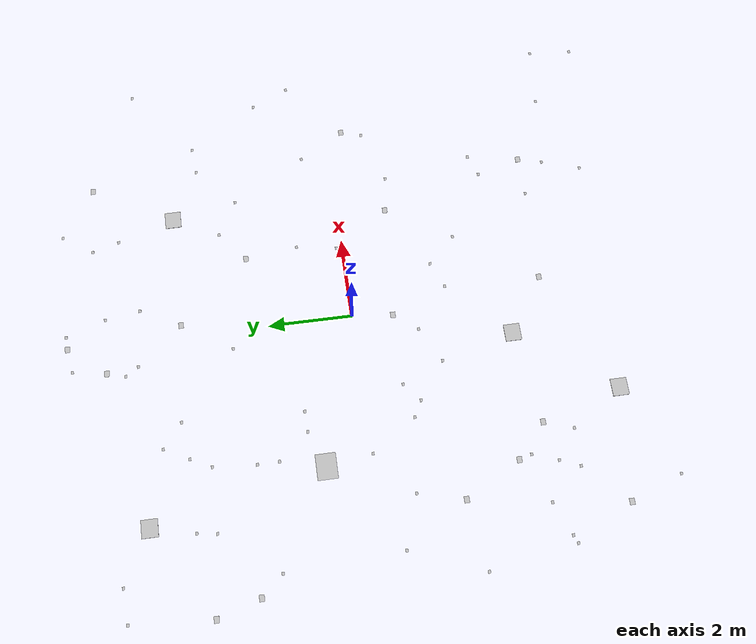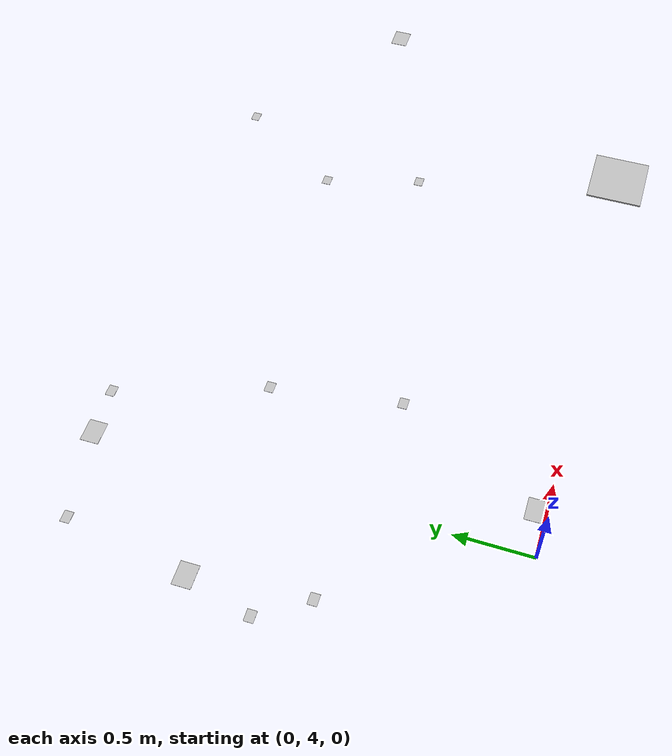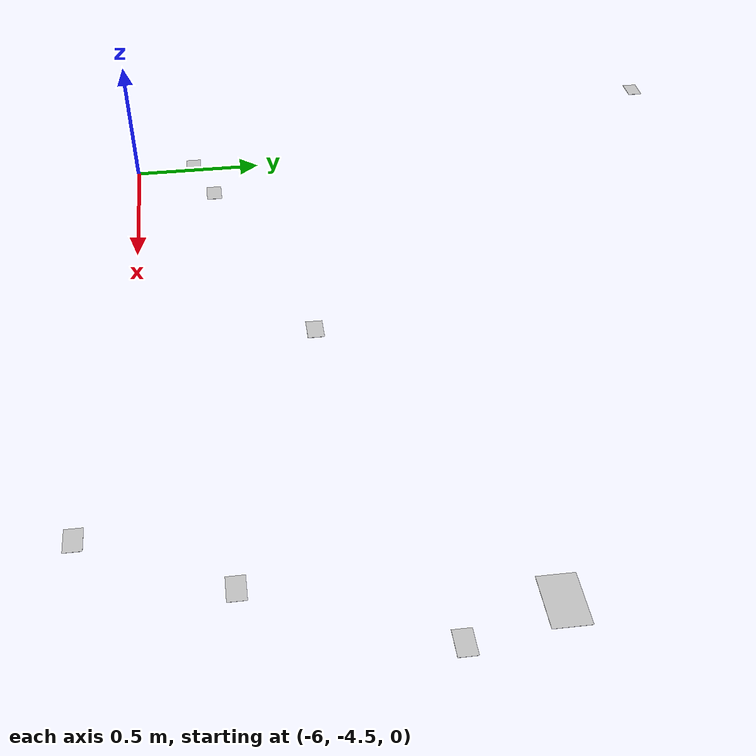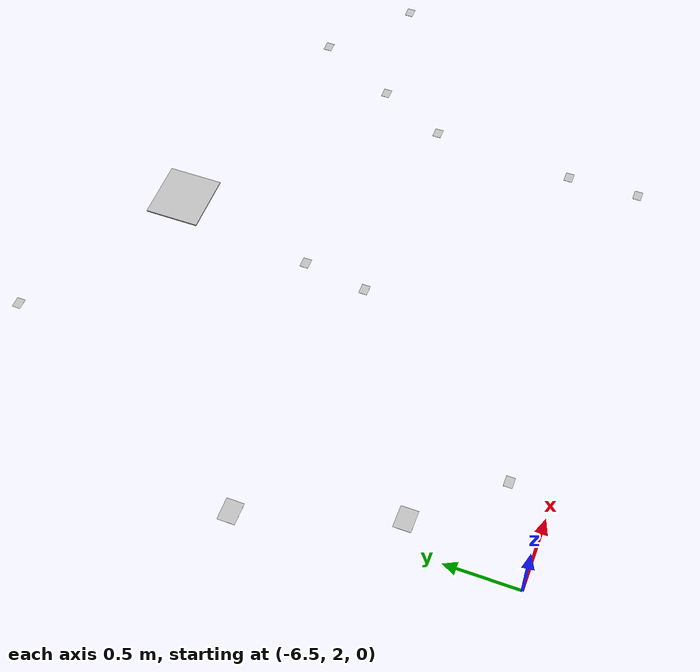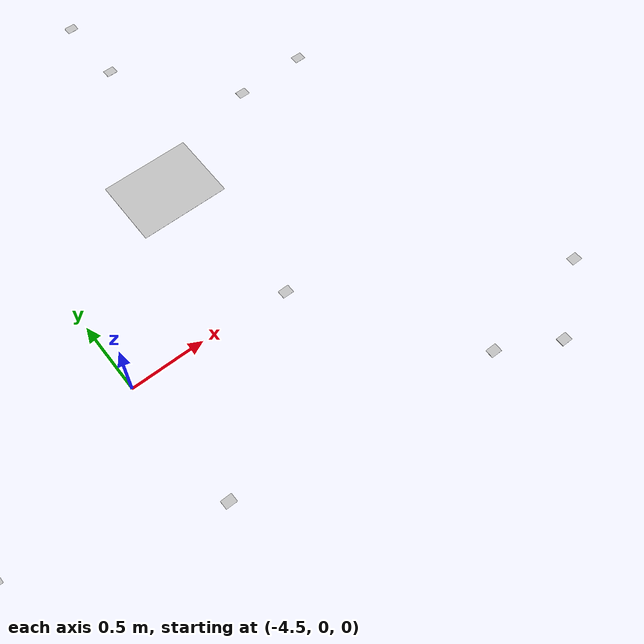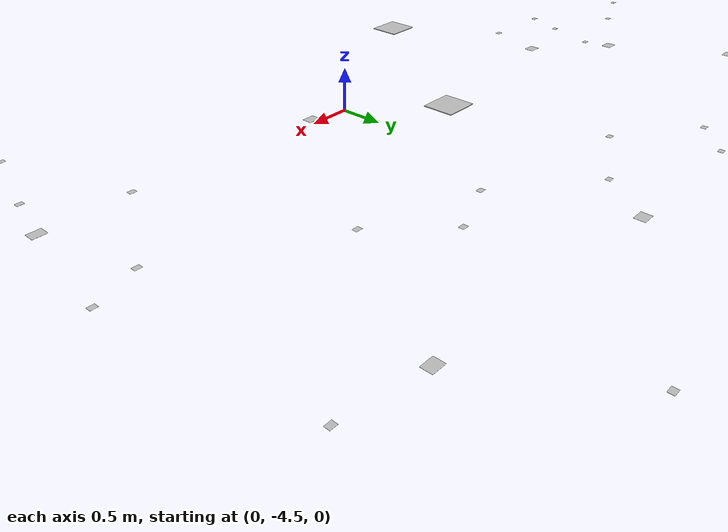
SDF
<sdf version="1.4">
 <world name="default">
  <light name="sun" type="directional">
   <pose>0 0 10 0 -0 0</pose>
   <diffuse>0.8 0.8 0.8 1</diffuse>
   <specular>0.2 0.2 0.2 1</specular>
   <attenuation>
    <range>1000</range>
    <constant>0.9</constant>
    <linear>0.01</linear>
    <quadratic>0.001</quadratic>
   </attenuation>
   <direction>-0.5 0.1 -0.9</direction>
  </light>
  <plugin name="SetupWorld" filename="libgazebo_plugins.so"/>
  <physics type="ode">
   <max_step_size>0.001</max_step_size>
   <real_time_factor>1</real_time_factor>
   <real_time_update_rate>1000</real_time_update_rate>
   <gravity>0 0 -9.8</gravity>
  </physics>
  <scene><ambient>0.4 0.4 0.4 1</ambient><background>0.7 0.7 0.7 1</background><shadows>1</shadows></scene>
  <spherical_coordinates>
   <surface_model>EARTH_WGS84</surface_model>
   <latitude_deg>0</latitude_deg>
   <longitude_deg>0</longitude_deg>
   <elevation>0</elevation>
   <heading_deg>0</heading_deg>
  </spherical_coordinates>
  <model name="atags64_0">
   <static>1</static>
   <link name="link">
    <collision name="collision"><geometry><box><size>0.611 0.473 0.001</size></box></geometry></collision>
    <visual name="visual">
     <geometry><box><size>0.611 0.473 0.001</size></box></geometry>
     <material>
      <script>
       <uri>model://atags64_0/materials/scripts</uri>
       <uri>model://atags64_0/materials/textures</uri>
       <name>atags64_0/Diffuse</name>
      </script>
     </material>
    </visual>
    <velocity_decay><linear>0</linear><angular>0</angular></velocity_decay>
   </link>
   <pose>-3.56522 1.04701 0 0 -0 0</pose>
  </model>
  <model name="atags16_0">
   <static>1</static>
   <link name="link">
    <inertial>
     <mass>1</mass>
     <inertia><ixx>1</ixx><ixy>0</ixy><ixz>0</ixz><iyy>1</iyy><iyz>0</iyz><izz>1</izz></inertia>
    </inertial>
    <collision name="collision">
     <geometry><box><size>0.419 0.381 0.01</size></box></geometry>
     <surface>
      <friction>
       <ode><mu>0.9</mu><mu2>0.9</mu2><fdir1>0 0 0</fdir1><slip1>0.7</slip1><slip2>0.7</slip2></ode>
      </friction>
     </surface>
    </collision>
    <visual name="visual">
     <geometry><box><size>0.419 0.381 0.01</size></box></geometry>
     <material>
      <script>
       <uri>model://atags16_0/materials/scripts</uri>
       <uri>model://atags16_0/materials/textures</uri>
       <name>atags16_0/Diffuse</name>
      </script>
     </material>
    </visual>
    <velocity_decay><linear>0</linear><angular>0</angular></velocity_decay>
   </link>
   <pose>3.11409 4.05142 0 0 -0 0</pose>
  </model>
  <model name="atags16_1">
   <static>1</static>
   <link name="link">
    <inertial>
     <mass>1</mass>
     <inertia><ixx>1</ixx><ixy>0</ixy><ixz>0</ixz><iyy>1</iyy><iyz>0</iyz><izz>1</izz></inertia>
    </inertial>
    <collision name="collision">
     <geometry><box><size>0.419 0.381 0.01</size></box></geometry>
     <surface>
      <friction>
       <ode><mu>0.9</mu><mu2>0.9</mu2><fdir1>0 0 0</fdir1><slip1>0.7</slip1><slip2>0.7</slip2></ode>
      </friction>
     </surface>
    </collision>
    <visual name="visual">
     <geometry><box><size>0.419 0.381 0.01</size></box></geometry>
     <material>
      <script>
       <uri>model://atags16_1/materials/scripts</uri>
       <uri>model://atags16_1/materials/textures</uri>
       <name>atags16_1/Diffuse</name>
      </script>
     </material>
    </visual>
    <velocity_decay><linear>0</linear><angular>0</angular></velocity_decay>
   </link>
   <pose>-4.45484 5.11871 0 0 -0 0</pose>
  </model>
  <model name="atags16_2">
   <static>1</static>
   <link name="link">
    <inertial>
     <mass>1</mass>
     <inertia><ixx>1</ixx><ixy>0</ixy><ixz>0</ixz><iyy>1</iyy><iyz>0</iyz><izz>1</izz></inertia>
    </inertial>
    <collision name="collision">
     <geometry><box><size>0.419 0.381 0.01</size></box></geometry>
     <surface>
      <friction>
       <ode><mu>0.9</mu><mu2>0.9</mu2><fdir1>0 0 0</fdir1><slip1>0.7</slip1><slip2>0.7</slip2></ode>
      </friction>
     </surface>
    </collision>
    <visual name="visual">
     <geometry><box><size>0.419 0.381 0.01</size></box></geometry>
     <material>
      <script>
       <uri>model://atags16_2/materials/scripts</uri>
       <uri>model://atags16_2/materials/textures</uri>
       <name>atags16_2/Diffuse</name>
      </script>
     </material>
    </visual>
    <velocity_decay><linear>0</linear><angular>0</angular></velocity_decay>
   </link>
   <pose>-2.57561 -5.94989 0 0 -0 0</pose>
  </model>
  <model name="atags16_3">
   <static>1</static>
   <link name="link">
    <inertial>
     <mass>1</mass>
     <inertia><ixx>1</ixx><ixy>0</ixy><ixz>0</ixz><iyy>1</iyy><iyz>0</iyz><izz>1</izz></inertia>
    </inertial>
    <collision name="collision">
     <geometry><box><size>0.419 0.381 0.01</size></box></geometry>
     <surface>
      <friction>
       <ode><mu>0.9</mu><mu2>0.9</mu2><fdir1>0 0 0</fdir1><slip1>0.7</slip1><slip2>0.7</slip2></ode>
      </friction>
     </surface>
    </collision>
    <visual name="visual">
     <geometry><box><size>0.419 0.381 0.01</size></box></geometry>
     <material>
      <script>
       <uri>model://atags16_3/materials/scripts</uri>
       <uri>model://atags16_3/materials/textures</uri>
       <name>atags16_3/Diffuse</name>
      </script>
     </material>
    </visual>
    <velocity_decay><linear>0</linear><angular>0</angular></velocity_decay>
   </link>
   <pose>-0.906619 -3.72103 0 0 -0 0</pose>
  </model>
  <model name="atags4_0">
   <static>1</static>
   <link name="link">
    <collision name="collision"><geometry><box><size>0.15275 0.11825 0.001</size></box></geometry></collision>
    <visual name="visual">
     <geometry><box><size>0.15275 0.11825 0.001</size></box></geometry>
     <material>
      <script>
       <uri>model://atags4_0/materials/scripts</uri>
       <uri>model://atags4_0/materials/textures</uri>
       <name>atags4_0/Diffuse</name>
      </script>
     </material>
    </visual>
    <velocity_decay><linear>0</linear><angular>0</angular></velocity_decay>
   </link>
   <pose>4.16882 5.97072 0 0 -0 0</pose>
  </model>
  <model name="atags4_1">
   <static>1</static>
   <link name="link">
    <collision name="collision"><geometry><box><size>0.15275 0.11825 0.001</size></box></geometry></collision>
    <visual name="visual">
     <geometry><box><size>0.15275 0.11825 0.001</size></box></geometry>
     <material>
      <script>
       <uri>model://atags4_1/materials/scripts</uri>
       <uri>model://atags4_1/materials/textures</uri>
       <name>atags4_1/Diffuse</name>
      </script>
     </material>
    </visual>
    <velocity_decay><linear>0</linear><angular>0</angular></velocity_decay>
   </link>
   <pose>-3.17739 -4.02207 0 0 -0 0</pose>
  </model>
  <model name="atags4_2">
   <static>1</static>
   <link name="link">
    <collision name="collision"><geometry><box><size>0.15275 0.11825 0.001</size></box></geometry></collision>
    <visual name="visual">
     <geometry><box><size>0.15275 0.11825 0.001</size></box></geometry>
     <material>
      <script>
       <uri>model://atags4_2/materials/scripts</uri>
       <uri>model://atags4_2/materials/textures</uri>
       <name>atags4_2/Diffuse</name>
      </script>
     </material>
    </visual>
    <velocity_decay><linear>0</linear><angular>0</angular></velocity_decay>
   </link>
   <pose>-5.26738 -5.6504 0 0 -0 0</pose>
  </model>
  <model name="atags4_3">
   <static>1</static>
   <link name="link">
    <collision name="collision"><geometry><box><size>0.15275 0.11825 0.001</size></box></geometry></collision>
    <visual name="visual">
     <geometry><box><size>0.15275 0.11825 0.001</size></box></geometry>
     <material>
      <script>
       <uri>model://atags4_3/materials/scripts</uri>
       <uri>model://atags4_3/materials/textures</uri>
       <name>atags4_3/Diffuse</name>
      </script>
     </material>
    </visual>
    <velocity_decay><linear>0</linear><angular>0</angular></velocity_decay>
   </link>
   <pose>-4.73706 -1.98034 0 0 -0 0</pose>
  </model>
  <model name="atags4_4">
   <static>1</static>
   <link name="link">
    <collision name="collision"><geometry><box><size>0.15275 0.11825 0.001</size></box></geometry></collision>
    <visual name="visual">
     <geometry><box><size>0.15275 0.11825 0.001</size></box></geometry>
     <material>
      <script>
       <uri>model://atags4_4/materials/scripts</uri>
       <uri>model://atags4_4/materials/textures</uri>
       <name>atags4_4/Diffuse</name>
      </script>
     </material>
    </visual>
    <velocity_decay><linear>0</linear><angular>0</angular></velocity_decay>
   </link>
   <pose>3.68197 -4.69267 0 0 -0 0</pose>
  </model>
  <model name="atags4_5">
   <static>1</static>
   <link name="link">
    <collision name="collision"><geometry><box><size>0.15275 0.11825 0.001</size></box></geometry></collision>
    <visual name="visual">
     <geometry><box><size>0.15275 0.11825 0.001</size></box></geometry>
     <material>
      <script>
       <uri>model://atags4_5/materials/scripts</uri>
       <uri>model://atags4_5/materials/textures</uri>
       <name>atags4_5/Diffuse</name>
      </script>
     </material>
    </visual>
    <velocity_decay><linear>0</linear><angular>0</angular></velocity_decay>
   </link>
   <pose>0.427616 -4.6106 0 0 -0 0</pose>
  </model>
  <model name="atags4_6">
   <static>1</static>
   <link name="link">
    <collision name="collision"><geometry><box><size>0.15275 0.11825 0.001</size></box></geometry></collision>
    <visual name="visual">
     <geometry><box><size>0.15275 0.11825 0.001</size></box></geometry>
     <material>
      <script>
       <uri>model://atags4_6/materials/scripts</uri>
       <uri>model://atags4_6/materials/textures</uri>
       <name>atags4_6/Diffuse</name>
      </script>
     </material>
    </visual>
    <velocity_decay><linear>0</linear><angular>0</angular></velocity_decay>
   </link>
   <pose>-0.092804 -0.969858 0 0 -0 0</pose>
  </model>
  <model name="atags4_7">
   <static>1</static>
   <link name="link">
    <collision name="collision"><geometry><box><size>0.15275 0.11825 0.001</size></box></geometry></collision>
    <visual name="visual">
     <geometry><box><size>0.15275 0.11825 0.001</size></box></geometry>
     <material>
      <script>
       <uri>model://atags4_7/materials/scripts</uri>
       <uri>model://atags4_7/materials/textures</uri>
       <name>atags4_7/Diffuse</name>
      </script>
     </material>
    </visual>
    <velocity_decay><linear>0</linear><angular>0</angular></velocity_decay>
   </link>
   <pose>-6.29669 2.79696 0 0 -0 0</pose>
  </model>
  <model name="atags4_8">
   <static>1</static>
   <link name="link">
    <collision name="collision"><geometry><box><size>0.15275 0.11825 0.001</size></box></geometry></collision>
    <visual name="visual">
     <geometry><box><size>0.15275 0.11825 0.001</size></box></geometry>
     <material>
      <script>
       <uri>model://atags4_8/materials/scripts</uri>
       <uri>model://atags4_8/materials/textures</uri>
       <name>atags4_8/Diffuse</name>
      </script>
     </material>
    </visual>
    <velocity_decay><linear>0</linear><angular>0</angular></velocity_decay>
   </link>
   <pose>-6.62153 3.81203 0 0 -0 0</pose>
  </model>
  <model name="atags4_9">
   <static>1</static>
   <link name="link">
    <collision name="collision"><geometry><box><size>0.15275 0.11825 0.001</size></box></geometry></collision>
    <visual name="visual">
     <geometry><box><size>0.15275 0.11825 0.001</size></box></geometry>
     <material>
      <script>
       <uri>model://atags4_9/materials/scripts</uri>
       <uri>model://atags4_9/materials/textures</uri>
       <name>atags4_9/Diffuse</name>
      </script>
     </material>
    </visual>
    <velocity_decay><linear>0</linear><angular>0</angular></velocity_decay>
   </link>
   <pose>0.301584 4.06447 0 0 -0 0</pose>
  </model>
  <model name="atags4_10">
   <static>1</static>
   <link name="link">
    <collision name="collision"><geometry><box><size>0.15275 0.11825 0.001</size></box></geometry></collision>
    <visual name="visual">
     <geometry><box><size>0.15275 0.11825 0.001</size></box></geometry>
     <material>
      <script>
       <uri>model://atags4_10/materials/scripts</uri>
       <uri>model://atags4_10/materials/textures</uri>
       <name>atags4_10/Diffuse</name>
      </script>
     </material>
    </visual>
    <velocity_decay><linear>0</linear><angular>0</angular></velocity_decay>
   </link>
   <pose>1.83355 2.36832 0 0 -0 0</pose>
  </model>
  <model name="atags4_11">
   <static>1</static>
   <link name="link">
    <collision name="collision"><geometry><box><size>0.15275 0.11825 0.001</size></box></geometry></collision>
    <visual name="visual">
     <geometry><box><size>0.15275 0.11825 0.001</size></box></geometry>
     <material>
      <script>
       <uri>model://atags4_11/materials/scripts</uri>
       <uri>model://atags4_11/materials/textures</uri>
       <name>atags4_11/Diffuse</name>
      </script>
     </material>
    </visual>
    <velocity_decay><linear>0</linear><angular>0</angular></velocity_decay>
   </link>
   <pose>2.7031 -1.16604 0 0 -0 0</pose>
  </model>
  <model name="atags4_12">
   <static>1</static>
   <link name="link">
    <collision name="collision"><geometry><box><size>0.15275 0.11825 0.001</size></box></geometry></collision>
    <visual name="visual">
     <geometry><box><size>0.15275 0.11825 0.001</size></box></geometry>
     <material>
      <script>
       <uri>model://atags4_12/materials/scripts</uri>
       <uri>model://atags4_12/materials/textures</uri>
       <name>atags4_12/Diffuse</name>
      </script>
     </material>
    </visual>
    <velocity_decay><linear>0</linear><angular>0</angular></velocity_decay>
   </link>
   <pose>0.036135 6.76651 0 0 -0 0</pose>
  </model>
  <model name="atags4_13">
   <static>1</static>
   <link name="link">
    <collision name="collision"><geometry><box><size>0.15275 0.11825 0.001</size></box></geometry></collision>
    <visual name="visual">
     <geometry><box><size>0.15275 0.11825 0.001</size></box></geometry>
     <material>
      <script>
       <uri>model://atags4_13/materials/scripts</uri>
       <uri>model://atags4_13/materials/textures</uri>
       <name>atags4_13/Diffuse</name>
      </script>
     </material>
    </visual>
    <velocity_decay><linear>0</linear><angular>0</angular></velocity_decay>
   </link>
   <pose>-0.6878 5.87285 0 0 -0 0</pose>
  </model>
  <model name="atags4_14">
   <static>1</static>
   <link name="link">
    <collision name="collision"><geometry><box><size>0.15275 0.11825 0.001</size></box></geometry></collision>
    <visual name="visual">
     <geometry><box><size>0.15275 0.11825 0.001</size></box></geometry>
     <material>
      <script>
       <uri>model://atags4_14/materials/scripts</uri>
       <uri>model://atags4_14/materials/textures</uri>
       <name>atags4_14/Diffuse</name>
      </script>
     </material>
    </visual>
    <velocity_decay><linear>0</linear><angular>0</angular></velocity_decay>
   </link>
   <pose>-3.98708 -3.31898 0 0 -0 0</pose>
  </model>
  <model name="atags4_15">
   <static>1</static>
   <link name="link">
    <collision name="collision"><geometry><box><size>0.15275 0.11825 0.001</size></box></geometry></collision>
    <visual name="visual">
     <geometry><box><size>0.15275 0.11825 0.001</size></box></geometry>
     <material>
      <script>
       <uri>model://atags4_15/materials/scripts</uri>
       <uri>model://atags4_15/materials/textures</uri>
       <name>atags4_15/Diffuse</name>
      </script>
     </material>
    </visual>
    <velocity_decay><linear>0</linear><angular>0</angular></velocity_decay>
   </link>
   <pose>5.04357 -0.364471 0 0 -0 0</pose>
  </model>
  <model name="at192">
   <static>1</static>
   <link name="link">
    <collision name="collision"><geometry><box><size>0.0763 0.05912 0.001</size></box></geometry></collision>
    <visual name="visual">
     <geometry><box><size>0.0763 0.05912 0.001</size></box></geometry>
     <material>
      <script>
       <uri>model://at192/materials/scripts</uri>
       <uri>model://at192/materials/textures</uri>
       <name>at192/Diffuse</name>
      </script>
     </material>
    </visual>
    <velocity_decay><linear>0</linear><angular>0</angular></velocity_decay>
   </link>
   <pose>-0.549014 6.6729 0 0 -0 0</pose>
  </model>
  <model name="at193">
   <static>1</static>
   <link name="link">
    <collision name="collision"><geometry><box><size>0.0763 0.05912 0.001</size></box></geometry></collision>
    <visual name="visual">
     <geometry><box><size>0.0763 0.05912 0.001</size></box></geometry>
     <material>
      <script>
       <uri>model://at193/materials/scripts</uri>
       <uri>model://at193/materials/textures</uri>
       <name>at193/Diffuse</name>
      </script>
     </material>
    </visual>
    <velocity_decay><linear>0</linear><angular>0</angular></velocity_decay>
   </link>
   <pose>0.796679 5.00969 0 0 -0 0</pose>
  </model>
  <model name="at194">
   <static>1</static>
   <link name="link">
    <collision name="collision"><geometry><box><size>0.0763 0.05912 0.001</size></box></geometry></collision>
    <visual name="visual">
     <geometry><box><size>0.0763 0.05912 0.001</size></box></geometry>
     <material>
      <script>
       <uri>model://at194/materials/scripts</uri>
       <uri>model://at194/materials/textures</uri>
       <name>at194/Diffuse</name>
      </script>
     </material>
    </visual>
    <velocity_decay><linear>0</linear><angular>0</angular></velocity_decay>
   </link>
   <pose>-0.455757 2.88995 0 0 -0 0</pose>
  </model>
  <model name="at195">
   <static>1</static>
   <link name="link">
    <collision name="collision"><geometry><box><size>0.0763 0.05912 0.001</size></box></geometry></collision>
    <visual name="visual">
     <geometry><box><size>0.0763 0.05912 0.001</size></box></geometry>
     <material>
      <script>
       <uri>model://at195/materials/scripts</uri>
       <uri>model://at195/materials/textures</uri>
       <name>at195/Diffuse</name>
      </script>
     </material>
    </visual>
    <velocity_decay><linear>0</linear><angular>0</angular></velocity_decay>
   </link>
   <pose>-3.89977 -3.61964 0 0 -0 0</pose>
  </model>
  <model name="at196">
   <static>1</static>
   <link name="link">
    <collision name="collision"><geometry><box><size>0.0763 0.05912 0.001</size></box></geometry></collision>
    <visual name="visual">
     <geometry><box><size>0.0763 0.05912 0.001</size></box></geometry>
     <material>
      <script>
       <uri>model://at196/materials/scripts</uri>
       <uri>model://at196/materials/textures</uri>
       <name>at196/Diffuse</name>
      </script>
     </material>
    </visual>
    <velocity_decay><linear>0</linear><angular>0</angular></velocity_decay>
   </link>
   <pose>5.02827 3.43413 0 0 -0 0</pose>
  </model>
  <model name="at197">
   <static>1</static>
   <link name="link">
    <collision name="collision"><geometry><box><size>0.0763 0.05912 0.001</size></box></geometry></collision>
    <visual name="visual">
     <geometry><box><size>0.0763 0.05912 0.001</size></box></geometry>
     <material>
      <script>
       <uri>model://at197/materials/scripts</uri>
       <uri>model://at197/materials/textures</uri>
       <name>at197/Diffuse</name>
      </script>
     </material>
    </visual>
    <velocity_decay><linear>0</linear><angular>0</angular></velocity_decay>
   </link>
   <pose>-1.39804 -1.9659 0 0 -0 0</pose>
  </model>
  <model name="at198">
   <static>1</static>
   <link name="link">
    <collision name="collision"><geometry><box><size>0.0763 0.05912 0.001</size></box></geometry></collision>
    <visual name="visual">
     <geometry><box><size>0.0763 0.05912 0.001</size></box></geometry>
     <material>
      <script>
       <uri>model://at198/materials/scripts</uri>
       <uri>model://at198/materials/textures</uri>
       <name>at198/Diffuse</name>
      </script>
     </material>
    </visual>
    <velocity_decay><linear>0</linear><angular>0</angular></velocity_decay>
   </link>
   <pose>-4.44999 -0.887325 0 0 -0 0</pose>
  </model>
  <model name="at199">
   <static>1</static>
   <link name="link">
    <collision name="collision"><geometry><box><size>0.0763 0.05912 0.001</size></box></geometry></collision>
    <visual name="visual">
     <geometry><box><size>0.0763 0.05912 0.001</size></box></geometry>
     <material>
      <script>
       <uri>model://at199/materials/scripts</uri>
       <uri>model://at199/materials/textures</uri>
       <name>at199/Diffuse</name>
      </script>
     </material>
    </visual>
    <velocity_decay><linear>0</linear><angular>0</angular></velocity_decay>
   </link>
   <pose>-6.02781 -4.26889 0 0 -0 0</pose>
  </model>
  <model name="at200">
   <static>1</static>
   <link name="link">
    <collision name="collision"><geometry><box><size>0.0763 0.05912 0.001</size></box></geometry></collision>
    <visual name="visual">
     <geometry><box><size>0.0763 0.05912 0.001</size></box></geometry>
     <material>
      <script>
       <uri>model://at200/materials/scripts</uri>
       <uri>model://at200/materials/textures</uri>
       <name>at200/Diffuse</name>
      </script>
     </material>
    </visual>
    <velocity_decay><linear>0</linear><angular>0</angular></velocity_decay>
   </link>
   <pose>6.75535 4.84128 0 0 -0 0</pose>
  </model>
  <model name="at201">
   <static>1</static>
   <link name="link">
    <collision name="collision"><geometry><box><size>0.0763 0.05912 0.001</size></box></geometry></collision>
    <visual name="visual">
     <geometry><box><size>0.0763 0.05912 0.001</size></box></geometry>
     <material>
      <script>
       <uri>model://at201/materials/scripts</uri>
       <uri>model://at201/materials/textures</uri>
       <name>at201/Diffuse</name>
      </script>
     </material>
    </visual>
    <velocity_decay><linear>0</linear><angular>0</angular></velocity_decay>
   </link>
   <pose>-3.31865 2.59819 0 0 -0 0</pose>
  </model>
  <model name="at202">
   <static>1</static>
   <link name="link">
    <collision name="collision"><geometry><box><size>0.0763 0.05912 0.001</size></box></geometry></collision>
    <visual name="visual">
     <geometry><box><size>0.0763 0.05912 0.001</size></box></geometry>
     <material>
      <script>
       <uri>model://at202/materials/scripts</uri>
       <uri>model://at202/materials/textures</uri>
       <name>at202/Diffuse</name>
      </script>
     </material>
    </visual>
    <velocity_decay><linear>0</linear><angular>0</angular></velocity_decay>
   </link>
   <pose>-3.2419 3.61802 0 0 -0 0</pose>
  </model>
  <model name="at203">
   <static>1</static>
   <link name="link">
    <collision name="collision"><geometry><box><size>0.0763 0.05912 0.001</size></box></geometry></collision>
    <visual name="visual">
     <geometry><box><size>0.0763 0.05912 0.001</size></box></geometry>
     <material>
      <script>
       <uri>model://at203/materials/scripts</uri>
       <uri>model://at203/materials/textures</uri>
       <name>at203/Diffuse</name>
      </script>
     </material>
    </visual>
    <velocity_decay><linear>0</linear><angular>0</angular></velocity_decay>
   </link>
   <pose>2.56422 2.96018 0 0 -0 0</pose>
  </model>
  <model name="at204">
   <static>1</static>
   <link name="link">
    <collision name="collision"><geometry><box><size>0.0763 0.05912 0.001</size></box></geometry></collision>
    <visual name="visual">
     <geometry><box><size>0.0763 0.05912 0.001</size></box></geometry>
     <material>
      <script>
       <uri>model://at204/materials/scripts</uri>
       <uri>model://at204/materials/textures</uri>
       <name>at204/Diffuse</name>
      </script>
     </material>
    </visual>
    <velocity_decay><linear>0</linear><angular>0</angular></velocity_decay>
   </link>
   <pose>2.67724 5.4185 0 0 -0 0</pose>
  </model>
  <model name="at205">
   <static>1</static>
   <link name="link">
    <collision name="collision"><geometry><box><size>0.0763 0.05912 0.001</size></box></geometry></collision>
    <visual name="visual">
     <geometry><box><size>0.0763 0.05912 0.001</size></box></geometry>
     <material>
      <script>
       <uri>model://at205/materials/scripts</uri>
       <uri>model://at205/materials/textures</uri>
       <name>at205/Diffuse</name>
      </script>
     </material>
    </visual>
    <velocity_decay><linear>0</linear><angular>0</angular></velocity_decay>
   </link>
   <pose>6.49239 0.894977 0 0 -0 0</pose>
  </model>
  <model name="at206">
   <static>1</static>
   <link name="link">
    <collision name="collision"><geometry><box><size>0.0763 0.05912 0.001</size></box></geometry></collision>
    <visual name="visual">
     <geometry><box><size>0.0763 0.05912 0.001</size></box></geometry>
     <material>
      <script>
       <uri>model://at206/materials/scripts</uri>
       <uri>model://at206/materials/textures</uri>
       <name>at206/Diffuse</name>
      </script>
     </material>
    </visual>
    <velocity_decay><linear>0</linear><angular>0</angular></velocity_decay>
   </link>
   <pose>-1.85133 -0.956624 0 0 -0 0</pose>
  </model>
  <model name="at207">
   <static>1</static>
   <link name="link">
    <collision name="collision"><geometry><box><size>0.0763 0.05912 0.001</size></box></geometry></collision>
    <visual name="visual">
     <geometry><box><size>0.0763 0.05912 0.001</size></box></geometry>
     <material>
      <script>
       <uri>model://at207/materials/scripts</uri>
       <uri>model://at207/materials/textures</uri>
       <name>at207/Diffuse</name>
      </script>
     </material>
    </visual>
    <velocity_decay><linear>0</linear><angular>0</angular></velocity_decay>
   </link>
   <pose>0.667875 5.84535 0 0 -0 0</pose>
  </model>
  <model name="at208">
   <static>1</static>
   <link name="link">
    <collision name="collision"><geometry><box><size>0.0763 0.05912 0.001</size></box></geometry></collision>
    <visual name="visual">
     <geometry><box><size>0.0763 0.05912 0.001</size></box></geometry>
     <material>
      <script>
       <uri>model://at208/materials/scripts</uri>
       <uri>model://at208/materials/textures</uri>
       <name>at208/Diffuse</name>
      </script>
     </material>
    </visual>
    <velocity_decay><linear>0</linear><angular>0</angular></velocity_decay>
   </link>
   <pose>1.8353 0.153297 0 0 -0 0</pose>
  </model>
  <model name="at209">
   <static>1</static>
   <link name="link">
    <collision name="collision"><geometry><box><size>0.0763 0.05912 0.001</size></box></geometry></collision>
    <visual name="visual">
     <geometry><box><size>0.0763 0.05912 0.001</size></box></geometry>
     <material>
      <script>
       <uri>model://at209/materials/scripts</uri>
       <uri>model://at209/materials/textures</uri>
       <name>at209/Diffuse</name>
      </script>
     </material>
    </visual>
    <velocity_decay><linear>0</linear><angular>0</angular></velocity_decay>
   </link>
   <pose>-3.40752 -0.03643 0 0 -0 0</pose>
  </model>
  <model name="at210">
   <static>1</static>
   <link name="link">
    <collision name="collision"><geometry><box><size>0.0763 0.05912 0.001</size></box></geometry></collision>
    <visual name="visual">
     <geometry><box><size>0.0763 0.05912 0.001</size></box></geometry>
     <material>
      <script>
       <uri>model://at210/materials/scripts</uri>
       <uri>model://at210/materials/textures</uri>
       <name>at210/Diffuse</name>
      </script>
     </material>
    </visual>
    <velocity_decay><linear>0</linear><angular>0</angular></velocity_decay>
   </link>
   <pose>-3.31257 2.09444 0 0 -0 0</pose>
  </model>
  <model name="at211">
   <static>1</static>
   <link name="link">
    <collision name="collision"><geometry><box><size>0.0763 0.05912 0.001</size></box></geometry></collision>
    <visual name="visual">
     <geometry><box><size>0.0763 0.05912 0.001</size></box></geometry>
     <material>
      <script>
       <uri>model://at211/materials/scripts</uri>
       <uri>model://at211/materials/textures</uri>
       <name>at211/Diffuse</name>
      </script>
     </material>
    </visual>
    <velocity_decay><linear>0</linear><angular>0</angular></velocity_decay>
   </link>
   <pose>4.89767 -0.862557 0 0 -0 0</pose>
  </model>
  <model name="at212">
   <static>1</static>
   <link name="link">
    <collision name="collision"><geometry><box><size>0.0763 0.05912 0.001</size></box></geometry></collision>
    <visual name="visual">
     <geometry><box><size>0.0763 0.05912 0.001</size></box></geometry>
     <material>
      <script>
       <uri>model://at212/materials/scripts</uri>
       <uri>model://at212/materials/textures</uri>
       <name>at212/Diffuse</name>
      </script>
     </material>
    </visual>
    <velocity_decay><linear>0</linear><angular>0</angular></velocity_decay>
   </link>
   <pose>-5.69288 5.76986 0 0 -0 0</pose>
  </model>
  <model name="at213">
   <static>1</static>
   <link name="link">
    <collision name="collision"><geometry><box><size>0.0763 0.05912 0.001</size></box></geometry></collision>
    <visual name="visual">
     <geometry><box><size>0.0763 0.05912 0.001</size></box></geometry>
     <material>
      <script>
       <uri>model://at213/materials/scripts</uri>
       <uri>model://at213/materials/textures</uri>
       <name>at213/Diffuse</name>
      </script>
     </material>
    </visual>
    <velocity_decay><linear>0</linear><angular>0</angular></velocity_decay>
   </link>
   <pose>1.76855 -2.71212 0 0 -0 0</pose>
  </model>
  <model name="at214">
   <static>1</static>
   <link name="link">
    <collision name="collision"><geometry><box><size>0.0763 0.05912 0.001</size></box></geometry></collision>
    <visual name="visual">
     <geometry><box><size>0.0763 0.05912 0.001</size></box></geometry>
     <material>
      <script>
       <uri>model://at214/materials/scripts</uri>
       <uri>model://at214/materials/textures</uri>
       <name>at214/Diffuse</name>
      </script>
     </material>
    </visual>
    <velocity_decay><linear>0</linear><angular>0</angular></velocity_decay>
   </link>
   <pose>0.048073 1.6239 0 0 -0 0</pose>
  </model>
  <model name="at215">
   <static>1</static>
   <link name="link">
    <collision name="collision"><geometry><box><size>0.0763 0.05912 0.001</size></box></geometry></collision>
    <visual name="visual">
     <geometry><box><size>0.0763 0.05912 0.001</size></box></geometry>
     <material>
      <script>
       <uri>model://at215/materials/scripts</uri>
       <uri>model://at215/materials/textures</uri>
       <name>at215/Diffuse</name>
      </script>
     </material>
    </visual>
    <velocity_decay><linear>0</linear><angular>0</angular></velocity_decay>
   </link>
   <pose>-4.77084 3.62943 0 0 -0 0</pose>
  </model>
  <model name="at216">
   <static>1</static>
   <link name="link">
    <collision name="collision"><geometry><box><size>0.0763 0.05912 0.001</size></box></geometry></collision>
    <visual name="visual">
     <geometry><box><size>0.0763 0.05912 0.001</size></box></geometry>
     <material>
      <script>
       <uri>model://at216/materials/scripts</uri>
       <uri>model://at216/materials/textures</uri>
       <name>at216/Diffuse</name>
      </script>
     </material>
    </visual>
    <velocity_decay><linear>0</linear><angular>0</angular></velocity_decay>
   </link>
   <pose>-2.67791 -1.11274 0 0 -0 0</pose>
  </model>
  <model name="at217">
   <static>1</static>
   <link name="link">
    <collision name="collision"><geometry><box><size>0.0763 0.05912 0.001</size></box></geometry></collision>
    <visual name="visual">
     <geometry><box><size>0.0763 0.05912 0.001</size></box></geometry>
     <material>
      <script>
       <uri>model://at217/materials/scripts</uri>
       <uri>model://at217/materials/textures</uri>
       <name>at217/Diffuse</name>
      </script>
     </material>
    </visual>
    <velocity_decay><linear>0</linear><angular>0</angular></velocity_decay>
   </link>
   <pose>0.347445 6.78631 0 0 -0 0</pose>
  </model>
  <model name="at218">
   <static>1</static>
   <link name="link">
    <collision name="collision"><geometry><box><size>0.0763 0.05912 0.001</size></box></geometry></collision>
    <visual name="visual">
     <geometry><box><size>0.0763 0.05912 0.001</size></box></geometry>
     <material>
      <script>
       <uri>model://at218/materials/scripts</uri>
       <uri>model://at218/materials/textures</uri>
       <name>at218/Diffuse</name>
      </script>
     </material>
    </visual>
    <velocity_decay><linear>0</linear><angular>0</angular></velocity_decay>
   </link>
   <pose>-5.05256 -3.87532 0 0 -0 0</pose>
  </model>
  <model name="at219">
   <static>1</static>
   <link name="link">
    <collision name="collision"><geometry><box><size>0.0763 0.05912 0.001</size></box></geometry></collision>
    <visual name="visual">
     <geometry><box><size>0.0763 0.05912 0.001</size></box></geometry>
     <material>
      <script>
       <uri>model://at219/materials/scripts</uri>
       <uri>model://at219/materials/textures</uri>
       <name>at219/Diffuse</name>
      </script>
     </material>
    </visual>
    <velocity_decay><linear>0</linear><angular>0</angular></velocity_decay>
   </link>
   <pose>5.3048 -5.46017 0 0 -0 0</pose>
  </model>
  <model name="at220">
   <static>1</static>
   <link name="link">
    <collision name="collision"><geometry><box><size>0.0763 0.05912 0.001</size></box></geometry></collision>
    <visual name="visual">
     <geometry><box><size>0.0763 0.05912 0.001</size></box></geometry>
     <material>
      <script>
       <uri>model://at220/materials/scripts</uri>
       <uri>model://at220/materials/textures</uri>
       <name>at220/Diffuse</name>
      </script>
     </material>
    </visual>
    <velocity_decay><linear>0</linear><angular>0</angular></velocity_decay>
   </link>
   <pose>3.91966 -3.44653 0 0 -0 0</pose>
  </model>
  <model name="at221">
   <static>1</static>
   <link name="link">
    <collision name="collision"><geometry><box><size>0.0763 0.05912 0.001</size></box></geometry></collision>
    <visual name="visual">
     <geometry><box><size>0.0763 0.05912 0.001</size></box></geometry>
     <material>
      <script>
       <uri>model://at221/materials/scripts</uri>
       <uri>model://at221/materials/textures</uri>
       <name>at221/Diffuse</name>
      </script>
     </material>
    </visual>
    <velocity_decay><linear>0</linear><angular>0</angular></velocity_decay>
   </link>
   <pose>0.483204 -2.31247 0 0 -0 0</pose>
  </model>
  <model name="at222">
   <static>1</static>
   <link name="link">
    <collision name="collision"><geometry><box><size>0.0763 0.05912 0.001</size></box></geometry></collision>
    <visual name="visual">
     <geometry><box><size>0.0763 0.05912 0.001</size></box></geometry>
     <material>
      <script>
       <uri>model://at222/materials/scripts</uri>
       <uri>model://at222/materials/textures</uri>
       <name>at222/Diffuse</name>
      </script>
     </material>
    </visual>
    <velocity_decay><linear>0</linear><angular>0</angular></velocity_decay>
   </link>
   <pose>-2.10035 4.23411 0 0 -0 0</pose>
  </model>
  <model name="at223">
   <static>1</static>
   <link name="link">
    <collision name="collision"><geometry><box><size>0.0763 0.05912 0.001</size></box></geometry></collision>
    <visual name="visual">
     <geometry><box><size>0.0763 0.05912 0.001</size></box></geometry>
     <material>
      <script>
       <uri>model://at223/materials/scripts</uri>
       <uri>model://at223/materials/textures</uri>
       <name>at223/Diffuse</name>
      </script>
     </material>
    </visual>
    <velocity_decay><linear>0</linear><angular>0</angular></velocity_decay>
   </link>
   <pose>-2.21043 1.39213 0 0 -0 0</pose>
  </model>
  <model name="at224">
   <static>1</static>
   <link name="link">
    <collision name="collision"><geometry><box><size>0.0763 0.05912 0.001</size></box></geometry></collision>
    <visual name="visual">
     <geometry><box><size>0.0763 0.05912 0.001</size></box></geometry>
     <material>
      <script>
       <uri>model://at224/materials/scripts</uri>
       <uri>model://at224/materials/textures</uri>
       <name>at224/Diffuse</name>
      </script>
     </material>
    </visual>
    <velocity_decay><linear>0</linear><angular>0</angular></velocity_decay>
   </link>
   <pose>-2.70232 1.377 0 0 -0 0</pose>
  </model>
  <model name="at225">
   <static>1</static>
   <link name="link">
    <collision name="collision"><geometry><box><size>0.0763 0.05912 0.001</size></box></geometry></collision>
    <visual name="visual">
     <geometry><box><size>0.0763 0.05912 0.001</size></box></geometry>
     <material>
      <script>
       <uri>model://at225/materials/scripts</uri>
       <uri>model://at225/materials/textures</uri>
       <name>at225/Diffuse</name>
      </script>
     </material>
    </visual>
    <velocity_decay><linear>0</linear><angular>0</angular></velocity_decay>
   </link>
   <pose>-3.41343 -4.70464 0 0 -0 0</pose>
  </model>
  <model name="at226">
   <static>1</static>
   <link name="link">
    <collision name="collision"><geometry><box><size>0.0763 0.05912 0.001</size></box></geometry></collision>
    <visual name="visual">
     <geometry><box><size>0.0763 0.05912 0.001</size></box></geometry>
     <material>
      <script>
       <uri>model://at226/materials/scripts</uri>
       <uri>model://at226/materials/textures</uri>
       <name>at226/Diffuse</name>
      </script>
     </material>
    </visual>
    <velocity_decay><linear>0</linear><angular>0</angular></velocity_decay>
   </link>
   <pose>-6.38556 -2.20631 0 0 -0 0</pose>
  </model>
  <model name="at227">
   <static>1</static>
   <link name="link">
    <collision name="collision"><geometry><box><size>0.0763 0.05912 0.001</size></box></geometry></collision>
    <visual name="visual">
     <geometry><box><size>0.0763 0.05912 0.001</size></box></geometry>
     <material>
      <script>
       <uri>model://at227/materials/scripts</uri>
       <uri>model://at227/materials/textures</uri>
       <name>at227/Diffuse</name>
      </script>
     </material>
    </visual>
    <velocity_decay><linear>0</linear><angular>0</angular></velocity_decay>
   </link>
   <pose>-5.83478 2.283 0 0 -0 0</pose>
  </model>
  <model name="at228">
   <static>1</static>
   <link name="link">
    <collision name="collision"><geometry><box><size>0.0763 0.05912 0.001</size></box></geometry></collision>
    <visual name="visual">
     <geometry><box><size>0.0763 0.05912 0.001</size></box></geometry>
     <material>
      <script>
       <uri>model://at228/materials/scripts</uri>
       <uri>model://at228/materials/textures</uri>
       <name>at228/Diffuse</name>
      </script>
     </material>
    </visual>
    <velocity_decay><linear>0</linear><angular>0</angular></velocity_decay>
   </link>
   <pose>1.98157 1.1133 0 0 -0 0</pose>
  </model>
  <model name="at229">
   <static>1</static>
   <link name="link">
    <collision name="collision"><geometry><box><size>0.0763 0.05912 0.001</size></box></geometry></collision>
    <visual name="visual">
     <geometry><box><size>0.0763 0.05912 0.001</size></box></geometry>
     <material>
      <script>
       <uri>model://at229/materials/scripts</uri>
       <uri>model://at229/materials/textures</uri>
       <name>at229/Diffuse</name>
      </script>
     </material>
    </visual>
    <velocity_decay><linear>0</linear><angular>0</angular></velocity_decay>
   </link>
   <pose>-2.99311 4.11073 0 0 -0 0</pose>
  </model>
  <model name="at230">
   <static>1</static>
   <link name="link">
    <collision name="collision"><geometry><box><size>0.0763 0.05912 0.001</size></box></geometry></collision>
    <visual name="visual">
     <geometry><box><size>0.0763 0.05912 0.001</size></box></geometry>
     <material>
      <script>
       <uri>model://at230/materials/scripts</uri>
       <uri>model://at230/materials/textures</uri>
       <name>at230/Diffuse</name>
      </script>
     </material>
    </visual>
    <velocity_decay><linear>0</linear><angular>0</angular></velocity_decay>
   </link>
   <pose>1.11529 -2.05457 0 0 -0 0</pose>
  </model>
  <model name="at231">
   <static>1</static>
   <link name="link">
    <collision name="collision"><geometry><box><size>0.0763 0.05912 0.001</size></box></geometry></collision>
    <visual name="visual">
     <geometry><box><size>0.0763 0.05912 0.001</size></box></geometry>
     <material>
      <script>
       <uri>model://at231/materials/scripts</uri>
       <uri>model://at231/materials/textures</uri>
       <name>at231/Diffuse</name>
      </script>
     </material>
    </visual>
    <velocity_decay><linear>0</linear><angular>0</angular></velocity_decay>
   </link>
   <pose>-5.68515 -0.479906 0 0 -0 0</pose>
  </model>
  <model name="at232">
   <static>1</static>
   <link name="link">
    <collision name="collision"><geometry><box><size>0.0763 0.05912 0.001</size></box></geometry></collision>
    <visual name="visual">
     <geometry><box><size>0.0763 0.05912 0.001</size></box></geometry>
     <material>
      <script>
       <uri>model://at232/materials/scripts</uri>
       <uri>model://at232/materials/textures</uri>
       <name>at232/Diffuse</name>
      </script>
     </material>
    </visual>
    <velocity_decay><linear>0</linear><angular>0</angular></velocity_decay>
   </link>
   <pose>-0.614744 5.13451 0 0 -0 0</pose>
  </model>
  <model name="at233">
   <static>1</static>
   <link name="link">
    <collision name="collision"><geometry><box><size>0.0763 0.05912 0.001</size></box></geometry></collision>
    <visual name="visual">
     <geometry><box><size>0.0763 0.05912 0.001</size></box></geometry>
     <material>
      <script>
       <uri>model://at233/materials/scripts</uri>
       <uri>model://at233/materials/textures</uri>
       <name>at233/Diffuse</name>
      </script>
     </material>
    </visual>
    <velocity_decay><linear>0</linear><angular>0</angular></velocity_decay>
   </link>
   <pose>2.97356 6.76846 0 0 -0 0</pose>
  </model>
  <model name="at234">
   <static>1</static>
   <link name="link">
    <collision name="collision"><geometry><box><size>0.0763 0.05912 0.001</size></box></geometry></collision>
    <visual name="visual">
     <geometry><box><size>0.0763 0.05912 0.001</size></box></geometry>
     <material>
      <script>
       <uri>model://at234/materials/scripts</uri>
       <uri>model://at234/materials/textures</uri>
       <name>at234/Diffuse</name>
      </script>
     </material>
    </visual>
    <velocity_decay><linear>0</linear><angular>0</angular></velocity_decay>
   </link>
   <pose>4.40473 0.721693 0 0 -0 0</pose>
  </model>
  <model name="at235">
   <static>1</static>
   <link name="link">
    <collision name="collision"><geometry><box><size>0.0763 0.05912 0.001</size></box></geometry></collision>
    <visual name="visual">
     <geometry><box><size>0.0763 0.05912 0.001</size></box></geometry>
     <material>
      <script>
       <uri>model://at235/materials/scripts</uri>
       <uri>model://at235/materials/textures</uri>
       <name>at235/Diffuse</name>
      </script>
     </material>
    </visual>
    <velocity_decay><linear>0</linear><angular>0</angular></velocity_decay>
   </link>
   <pose>2.70649 -4.7057 0 0 -0 0</pose>
  </model>
  <model name="at236">
   <static>1</static>
   <link name="link">
    <collision name="collision"><geometry><box><size>0.0763 0.05912 0.001</size></box></geometry></collision>
    <visual name="visual">
     <geometry><box><size>0.0763 0.05912 0.001</size></box></geometry>
     <material>
      <script>
       <uri>model://at236/materials/scripts</uri>
       <uri>model://at236/materials/textures</uri>
       <name>at236/Diffuse</name>
      </script>
     </material>
    </visual>
    <velocity_decay><linear>0</linear><angular>0</angular></velocity_decay>
   </link>
   <pose>-4.78618 -6.89582 0 0 -0 0</pose>
  </model>
  <model name="at237">
   <static>1</static>
   <link name="link">
    <collision name="collision"><geometry><box><size>0.0763 0.05912 0.001</size></box></geometry></collision>
    <visual name="visual">
     <geometry><box><size>0.0763 0.05912 0.001</size></box></geometry>
     <material>
      <script>
       <uri>model://at237/materials/scripts</uri>
       <uri>model://at237/materials/textures</uri>
       <name>at237/Diffuse</name>
      </script>
     </material>
    </visual>
    <velocity_decay><linear>0</linear><angular>0</angular></velocity_decay>
   </link>
   <pose>3.5713 -1.2996 0 0 -0 0</pose>
  </model>
  <model name="at238">
   <static>1</static>
   <link name="link">
    <collision name="collision"><geometry><box><size>0.0763 0.05912 0.001</size></box></geometry></collision>
    <visual name="visual">
     <geometry><box><size>0.0763 0.05912 0.001</size></box></geometry>
     <material>
      <script>
       <uri>model://at238/materials/scripts</uri>
       <uri>model://at238/materials/textures</uri>
       <name>at238/Diffuse</name>
      </script>
     </material>
    </visual>
    <velocity_decay><linear>0</linear><angular>0</angular></velocity_decay>
   </link>
   <pose>-4.70047 4.08575 0 0 -0 0</pose>
  </model>
  <model name="at239">
   <static>1</static>
   <link name="link">
    <collision name="collision"><geometry><box><size>0.0763 0.05912 0.001</size></box></geometry></collision>
    <visual name="visual">
     <geometry><box><size>0.0763 0.05912 0.001</size></box></geometry>
     <material>
      <script>
       <uri>model://at239/materials/scripts</uri>
       <uri>model://at239/materials/textures</uri>
       <name>at239/Diffuse</name>
      </script>
     </material>
    </visual>
    <velocity_decay><linear>0</linear><angular>0</angular></velocity_decay>
   </link>
   <pose>3.39408 -3.63524 0 0 -0 0</pose>
  </model>
  <model name="at240">
   <static>1</static>
   <link name="link">
    <collision name="collision"><geometry><box><size>0.0763 0.05912 0.001</size></box></geometry></collision>
    <visual name="visual">
     <geometry><box><size>0.0763 0.05912 0.001</size></box></geometry>
     <material>
      <script>
       <uri>model://at240/materials/scripts</uri>
       <uri>model://at240/materials/textures</uri>
       <name>at240/Diffuse</name>
      </script>
     </material>
    </visual>
    <velocity_decay><linear>0</linear><angular>0</angular></velocity_decay>
   </link>
   <pose>-0.531255 -1.52435 0 0 -0 0</pose>
  </model>
  <model name="at241">
   <static>1</static>
   <link name="link">
    <collision name="collision"><geometry><box><size>0.0763 0.05912 0.001</size></box></geometry></collision>
    <visual name="visual">
     <geometry><box><size>0.0763 0.05912 0.001</size></box></geometry>
     <material>
      <script>
       <uri>model://at241/materials/scripts</uri>
       <uri>model://at241/materials/textures</uri>
       <name>at241/Diffuse</name>
      </script>
     </material>
    </visual>
    <velocity_decay><linear>0</linear><angular>0</angular></velocity_decay>
   </link>
   <pose>4.37805 3.37564 0 0 -0 0</pose>
  </model>
  <model name="at242">
   <static>1</static>
   <link name="link">
    <collision name="collision"><geometry><box><size>0.0763 0.05912 0.001</size></box></geometry></collision>
    <visual name="visual">
     <geometry><box><size>0.0763 0.05912 0.001</size></box></geometry>
     <material>
      <script>
       <uri>model://at242/materials/scripts</uri>
       <uri>model://at242/materials/textures</uri>
       <name>at242/Diffuse</name>
      </script>
     </material>
    </visual>
    <velocity_decay><linear>0</linear><angular>0</angular></velocity_decay>
   </link>
   <pose>-4.31362 -4.67923 0 0 -0 0</pose>
  </model>
  <model name="at243">
   <static>1</static>
   <link name="link">
    <collision name="collision"><geometry><box><size>0.0763 0.05912 0.001</size></box></geometry></collision>
    <visual name="visual">
     <geometry><box><size>0.0763 0.05912 0.001</size></box></geometry>
     <material>
      <script>
       <uri>model://at243/materials/scripts</uri>
       <uri>model://at243/materials/textures</uri>
       <name>at243/Diffuse</name>
      </script>
     </material>
    </visual>
    <velocity_decay><linear>0</linear><angular>0</angular></velocity_decay>
   </link>
   <pose>-2.29538 -1.31563 0 0 -0 0</pose>
  </model>
  <model name="at244">
   <static>1</static>
   <link name="link">
    <collision name="collision"><geometry><box><size>0.0763 0.05912 0.001</size></box></geometry></collision>
    <visual name="visual">
     <geometry><box><size>0.0763 0.05912 0.001</size></box></geometry>
     <material>
      <script>
       <uri>model://at244/materials/scripts</uri>
       <uri>model://at244/materials/textures</uri>
       <name>at244/Diffuse</name>
      </script>
     </material>
    </visual>
    <velocity_decay><linear>0</linear><angular>0</angular></velocity_decay>
   </link>
   <pose>-6.48906 5.71992 0 0 -0 0</pose>
  </model>
  <model name="at245">
   <static>1</static>
   <link name="link">
    <collision name="collision"><geometry><box><size>0.0763 0.05912 0.001</size></box></geometry></collision>
    <visual name="visual">
     <geometry><box><size>0.0763 0.05912 0.001</size></box></geometry>
     <material>
      <script>
       <uri>model://at245/materials/scripts</uri>
       <uri>model://at245/materials/textures</uri>
       <name>at245/Diffuse</name>
      </script>
     </material>
    </visual>
    <velocity_decay><linear>0</linear><angular>0</angular></velocity_decay>
   </link>
   <pose>3.5298 -5.27422 0 0 -0 0</pose>
  </model>
  <model name="at246">
   <static>1</static>
   <link name="link">
    <collision name="collision"><geometry><box><size>0.0763 0.05912 0.001</size></box></geometry></collision>
    <visual name="visual">
     <geometry><box><size>0.0763 0.05912 0.001</size></box></geometry>
     <material>
      <script>
       <uri>model://at246/materials/scripts</uri>
       <uri>model://at246/materials/textures</uri>
       <name>at246/Diffuse</name>
      </script>
     </material>
    </visual>
    <velocity_decay><linear>0</linear><angular>0</angular></velocity_decay>
   </link>
   <pose>6.76029 -5.58643 0 0 -0 0</pose>
  </model>
  <model name="at247">
   <static>1</static>
   <link name="link">
    <collision name="collision"><geometry><box><size>0.0763 0.05912 0.001</size></box></geometry></collision>
    <visual name="visual">
     <geometry><box><size>0.0763 0.05912 0.001</size></box></geometry>
     <material>
      <script>
       <uri>model://at247/materials/scripts</uri>
       <uri>model://at247/materials/textures</uri>
       <name>at247/Diffuse</name>
      </script>
     </material>
    </visual>
    <velocity_decay><linear>0</linear><angular>0</angular></velocity_decay>
   </link>
   <pose>-4.11648 -4.21767 0 0 -0 0</pose>
  </model>
  <model name="at248">
   <static>1</static>
   <link name="link">
    <collision name="collision"><geometry><box><size>0.0763 0.05912 0.001</size></box></geometry></collision>
    <visual name="visual">
     <geometry><box><size>0.0763 0.05912 0.001</size></box></geometry>
     <material>
      <script>
       <uri>model://at248/materials/scripts</uri>
       <uri>model://at248/materials/textures</uri>
       <name>at248/Diffuse</name>
      </script>
     </material>
    </visual>
    <velocity_decay><linear>0</linear><angular>0</angular></velocity_decay>
   </link>
   <pose>6.68595 -6.61175 0 0 -0 0</pose>
  </model>
  <model name="at249">
   <static>1</static>
   <link name="link">
    <collision name="collision"><geometry><box><size>0.0763 0.05912 0.001</size></box></geometry></collision>
    <visual name="visual">
     <geometry><box><size>0.0763 0.05912 0.001</size></box></geometry>
     <material>
      <script>
       <uri>model://at249/materials/scripts</uri>
       <uri>model://at249/materials/textures</uri>
       <name>at249/Diffuse</name>
      </script>
     </material>
    </visual>
    <velocity_decay><linear>0</linear><angular>0</angular></velocity_decay>
   </link>
   <pose>3.40402 2.49245 0 0 -0 0</pose>
  </model>
  <model name="at250">
   <static>1</static>
   <link name="link">
    <collision name="collision"><geometry><box><size>0.0763 0.05912 0.001</size></box></geometry></collision>
    <visual name="visual">
     <geometry><box><size>0.0763 0.05912 0.001</size></box></geometry>
     <material>
      <script>
       <uri>model://at250/materials/scripts</uri>
       <uri>model://at250/materials/textures</uri>
       <name>at250/Diffuse</name>
      </script>
     </material>
    </visual>
    <velocity_decay><linear>0</linear><angular>0</angular></velocity_decay>
   </link>
   <pose>2.49662 6.05386 0 0 -0 0</pose>
  </model>
  <model name="at251">
   <static>1</static>
   <link name="link">
    <collision name="collision"><geometry><box><size>0.0763 0.05912 0.001</size></box></geometry></collision>
    <visual name="visual">
     <geometry><box><size>0.0763 0.05912 0.001</size></box></geometry>
     <material>
      <script>
       <uri>model://at251/materials/scripts</uri>
       <uri>model://at251/materials/textures</uri>
       <name>at251/Diffuse</name>
      </script>
     </material>
    </visual>
    <velocity_decay><linear>0</linear><angular>0</angular></velocity_decay>
   </link>
   <pose>-2.68176 4.69616 0 0 -0 0</pose>
  </model>
  <model name="at252">
   <static>1</static>
   <link name="link">
    <collision name="collision"><geometry><box><size>0.0763 0.05912 0.001</size></box></geometry></collision>
    <visual name="visual">
     <geometry><box><size>0.0763 0.05912 0.001</size></box></geometry>
     <material>
      <script>
       <uri>model://at252/materials/scripts</uri>
       <uri>model://at252/materials/textures</uri>
       <name>at252/Diffuse</name>
      </script>
     </material>
    </visual>
    <velocity_decay><linear>0</linear><angular>0</angular></velocity_decay>
   </link>
   <pose>3.23961 -6.18768 0 0 -0 0</pose>
  </model>
  <model name="at253">
   <static>1</static>
   <link name="link">
    <collision name="collision"><geometry><box><size>0.0763 0.05912 0.001</size></box></geometry></collision>
    <visual name="visual">
     <geometry><box><size>0.0763 0.05912 0.001</size></box></geometry>
     <material>
      <script>
       <uri>model://at253/materials/scripts</uri>
       <uri>model://at253/materials/textures</uri>
       <name>at253/Diffuse</name>
      </script>
     </material>
    </visual>
    <velocity_decay><linear>0</linear><angular>0</angular></velocity_decay>
   </link>
   <pose>-5.83909 -4.19165 0 0 -0 0</pose>
  </model>
  <model name="at254">
   <static>1</static>
   <link name="link">
    <collision name="collision"><geometry><box><size>0.0763 0.05912 0.001</size></box></geometry></collision>
    <visual name="visual">
     <geometry><box><size>0.0763 0.05912 0.001</size></box></geometry>
     <material>
      <script>
       <uri>model://at254/materials/scripts</uri>
       <uri>model://at254/materials/textures</uri>
       <name>at254/Diffuse</name>
      </script>
     </material>
    </visual>
    <velocity_decay><linear>0</linear><angular>0</angular></velocity_decay>
   </link>
   <pose>-0.812024 5.43896 0 0 -0 0</pose>
  </model>
  <model name="at255">
   <static>1</static>
   <link name="link">
    <collision name="collision"><geometry><box><size>0.0763 0.05912 0.001</size></box></geometry></collision>
    <visual name="visual">
     <geometry><box><size>0.0763 0.05912 0.001</size></box></geometry>
     <material>
      <script>
       <uri>model://at255/materials/scripts</uri>
       <uri>model://at255/materials/textures</uri>
       <name>at255/Diffuse</name>
      </script>
     </material>
    </visual>
    <velocity_decay><linear>0</linear><angular>0</angular></velocity_decay>
   </link>
   <pose>6.08399 1.77436 0 0 -0 0</pose>
  </model>
 </world>
</sdf>
